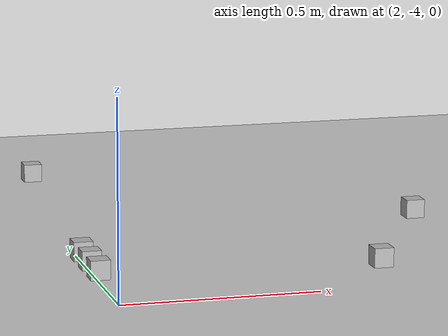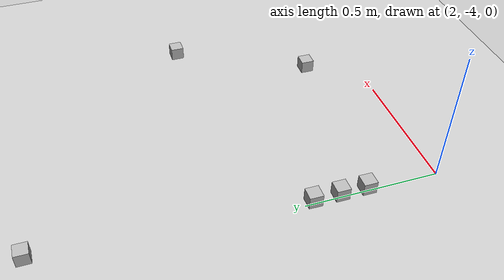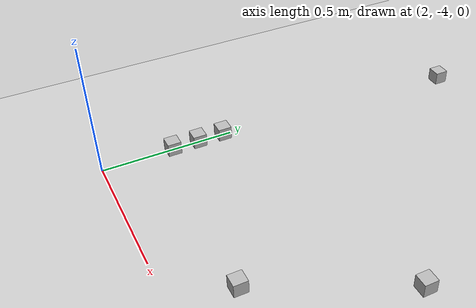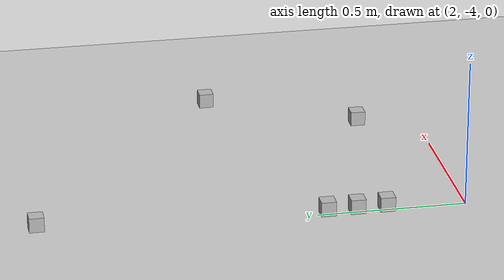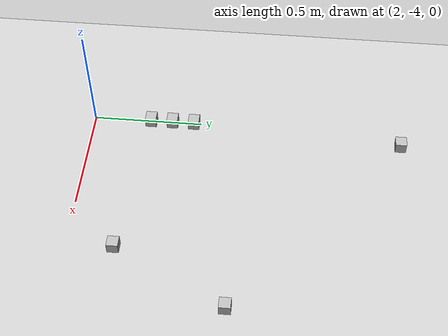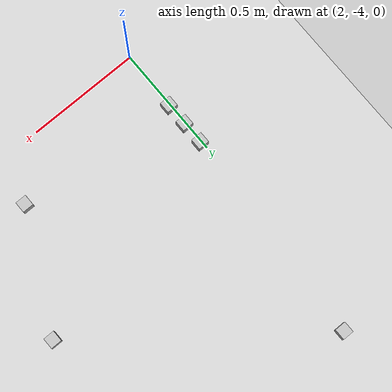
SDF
<sdf version="1.6">
 <world name="default">
  <model name="ground_plane">
   <static>1</static>
   <link name="link">
    <collision name="collision">
     <geometry><plane><normal>0 0 1</normal><size>100 100</size></plane></geometry>
     <surface><friction><ode><mu>100</mu><mu2>50</mu2></ode></friction></surface>
    </collision>
    <visual name="visual">
     <cast_shadows>0</cast_shadows>
     <geometry><plane><normal>0 0 1</normal><size>100 100</size></plane></geometry>
     <material>
      <script><uri>file://media/materials/scripts/gazebo.material</uri><name>Gazebo/Grey</name></script>
     </material>
    </visual>
    <velocity_decay><linear>0</linear><angular>0</angular></velocity_decay>
   </link>
  </model>
  <model name="at103">
   <static>0</static>
   <link name="link">
    <inertial>
     <mass>0.01</mass>
     <inertia><ixx>4e-05</ixx><ixy>0</ixy><ixz>0</ixz><iyy>4e-05</iyy><iyz>0</iyz><izz>4e-05</izz></inertia>
    </inertial>
    <visual name="visual">
     <transparency>0.1</transparency>
     <geometry><box><size>0.05 0.05 0.05</size></box></geometry>
     <material>
      <script>
       <uri>model://at0/materials/scripts</uri>
       <uri>model://at0/materials/textures</uri>
       <name>at0/Diffuse</name>
      </script>
     </material>
    </visual>
    <collision name="collision">
     <geometry><box><size>0.05 0.05 0.05</size></box></geometry>
     <surface><friction><ode><mu>0.8</mu><mu2>0.7</mu2></ode></friction></surface>
    </collision>
    <velocity_decay><linear>0</linear><angular>0</angular></velocity_decay>
   </link>
   <pose>2.00915 -3.73334 0.024993 -2.9e-05 -2.9e-05 3e-06</pose>
  </model>
  <model name="at107">
   <static>0</static>
   <link name="link">
    <inertial>
     <mass>0.01</mass>
     <inertia><ixx>4e-05</ixx><ixy>0</ixy><ixz>0</ixz><iyy>4e-05</iyy><iyz>0</iyz><izz>4e-05</izz></inertia>
    </inertial>
    <visual name="visual">
     <transparency>0.1</transparency>
     <geometry><box><size>0.05 0.05 0.05</size></box></geometry>
     <material>
      <script>
       <uri>model://at0/materials/scripts</uri>
       <uri>model://at0/materials/textures</uri>
       <name>at0/Diffuse</name>
      </script>
     </material>
    </visual>
    <collision name="collision">
     <geometry><box><size>0.05 0.05 0.05</size></box></geometry>
     <surface><friction><ode><mu>0.8</mu><mu2>0.7</mu2></ode></friction></surface>
    </collision>
    <velocity_decay><linear>0</linear><angular>0</angular></velocity_decay>
   </link>
   <pose>2.00915 -3.63334 0.024993 -2.9e-05 -2.9e-05 3e-06</pose>
  </model>
  <model name="at111">
   <static>0</static>
   <link name="link">
    <inertial>
     <mass>0.01</mass>
     <inertia><ixx>4e-05</ixx><ixy>0</ixy><ixz>0</ixz><iyy>4e-05</iyy><iyz>0</iyz><izz>4e-05</izz></inertia>
    </inertial>
    <visual name="visual">
     <transparency>0.1</transparency>
     <geometry><box><size>0.05 0.05 0.05</size></box></geometry>
     <material>
      <script>
       <uri>model://at0/materials/scripts</uri>
       <uri>model://at0/materials/textures</uri>
       <name>at0/Diffuse</name>
      </script>
     </material>
    </visual>
    <collision name="collision">
     <geometry><box><size>0.05 0.05 0.05</size></box></geometry>
     <surface><friction><ode><mu>0.8</mu><mu2>0.7</mu2></ode></friction></surface>
    </collision>
    <velocity_decay><linear>0</linear><angular>0</angular></velocity_decay>
   </link>
   <pose>2.00915 -3.53334 0.024997 2.9e-05 2.9e-05 2e-06</pose>
  </model>
  <model name="at187">
   <static>0</static>
   <link name="link">
    <inertial>
     <mass>0.01</mass>
     <inertia><ixx>4e-05</ixx><ixy>0</ixy><ixz>0</ixz><iyy>4e-05</iyy><iyz>0</iyz><izz>4e-05</izz></inertia>
    </inertial>
    <visual name="visual">
     <transparency>0.1</transparency>
     <geometry><box><size>0.05 0.05 0.05</size></box></geometry>
     <material>
      <script>
       <uri>model://at0/materials/scripts</uri>
       <uri>model://at0/materials/textures</uri>
       <name>at0/Diffuse</name>
      </script>
     </material>
    </visual>
    <collision name="collision">
     <geometry><box><size>0.05 0.05 0.05</size></box></geometry>
     <surface><friction><ode><mu>0.8</mu><mu2>0.7</mu2></ode></friction></surface>
    </collision>
    <velocity_decay><linear>0</linear><angular>0</angular></velocity_decay>
   </link>
   <pose>2.72177 -3.79047 0.024997 2.9e-05 2.9e-05 1e-06</pose>
  </model>
  <model name="at208">
   <static>0</static>
   <link name="link">
    <inertial>
     <mass>0.01</mass>
     <inertia><ixx>4e-05</ixx><ixy>0</ixy><ixz>0</ixz><iyy>4e-05</iyy><iyz>0</iyz><izz>4e-05</izz></inertia>
    </inertial>
    <visual name="visual">
     <transparency>0.1</transparency>
     <geometry><box><size>0.05 0.05 0.05</size></box></geometry>
     <material>
      <script>
       <uri>model://at0/materials/scripts</uri>
       <uri>model://at0/materials/textures</uri>
       <name>at0/Diffuse</name>
      </script>
     </material>
    </visual>
    <collision name="collision">
     <geometry><box><size>0.05 0.05 0.05</size></box></geometry>
     <surface><friction><ode><mu>0.8</mu><mu2>0.7</mu2></ode></friction></surface>
    </collision>
    <velocity_decay><linear>0</linear><angular>0</angular></velocity_decay>
   </link>
   <pose>2.97675 -3.29177 0.024993 -2.9e-05 -2.9e-05 1e-06</pose>
  </model>
  <model name="at214">
   <static>0</static>
   <link name="link">
    <inertial>
     <mass>0.01</mass>
     <inertia><ixx>4e-05</ixx><ixy>0</ixy><ixz>0</ixz><iyy>4e-05</iyy><iyz>0</iyz><izz>4e-05</izz></inertia>
    </inertial>
    <visual name="visual">
     <transparency>0.1</transparency>
     <geometry><box><size>0.05 0.05 0.05</size></box></geometry>
     <material>
      <script>
       <uri>model://at0/materials/scripts</uri>
       <uri>model://at0/materials/textures</uri>
       <name>at0/Diffuse</name>
      </script>
     </material>
    </visual>
    <collision name="collision">
     <geometry><box><size>0.05 0.05 0.05</size></box></geometry>
     <surface><friction><ode><mu>0.8</mu><mu2>0.7</mu2></ode></friction></surface>
    </collision>
    <velocity_decay><linear>0</linear><angular>0</angular></velocity_decay>
   </link>
   <pose>2.06503 -2.57604 0.024997 2.9e-05 2.9e-05 1e-06</pose>
  </model>
 </world>
</sdf>
